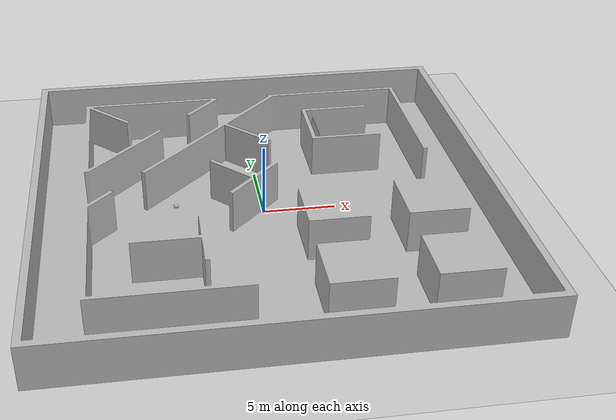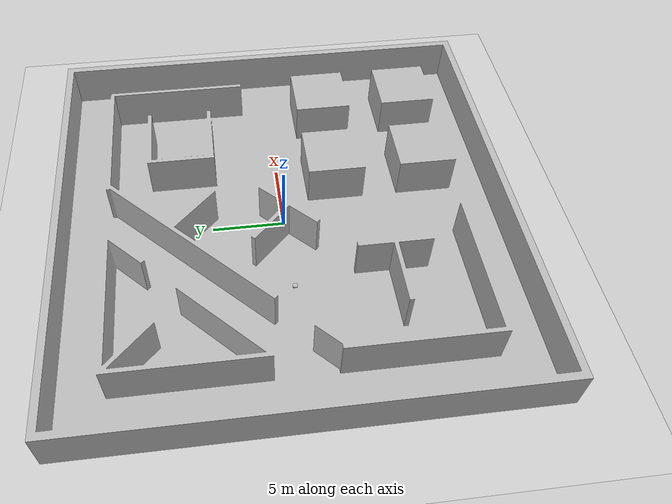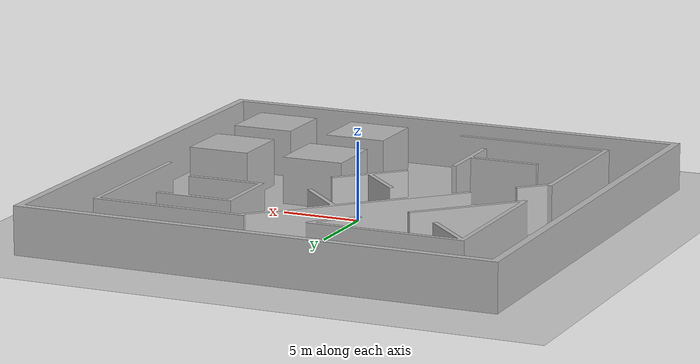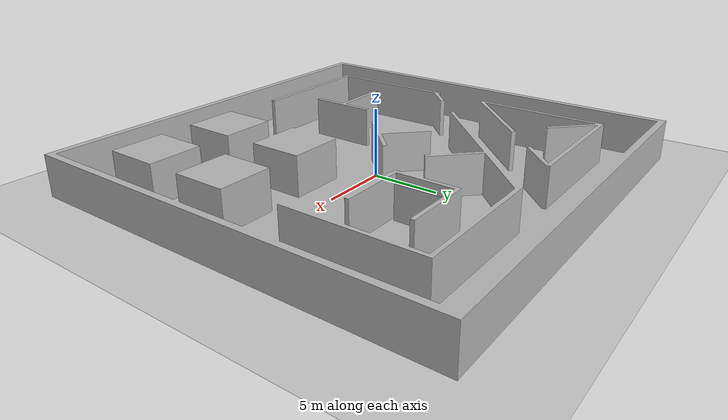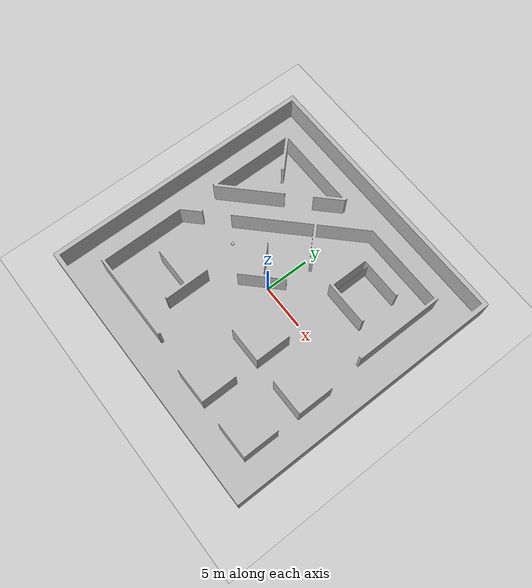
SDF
<?xml version="1.0" ?>
<sdf version="1.6">
  <world name="default">

    <!-- 光照 -->
    <include>
      <uri>model://sun</uri>
    </include>

    <!-- 地面（可选，但建议有，方便定位） -->
    <include>
      <uri>model://ground_plane</uri>
    </include>

    <!-- 你的迷宫墙体 mesh 地图 -->
    <model name="complex_office_map">
      <static>true</static>
      <pose>15.5 15.5 -0.5  1.5708 0 -1.5708</pose>
      <link name="map_link">
        <visual name="map_visual">
          <geometry>
            <mesh>
              <uri>file:///root/catkin_ws/src/FALCON/uav_simulator/map_render/resource/complex_office.dae</uri>
            <scale>1 1 1</scale>
            </mesh>
          </geometry>
        </visual>
      </link>
    </model>

    <include>
    <uri>model:///root/catkin_ws/src/gazebo</uri>
    <name>gz_uav</name>
    <pose>-6 0 1 0 0 0</pose>
    </include>

    <include>
    <uri>model://poster_plane</uri>
    <name>poster1</name>
    <pose>5 7 1 0 0 0</pose>
    </include>

  </world>
</sdf>

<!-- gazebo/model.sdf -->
<sdf version="1.6">
  <model name="falcon_cam_uav">
    <static>false</static>

    <link name="base_link">
      <pose>0 0 0 0 0 0</pose>

      <!-- 一个很小的盒子，方便你在GUI里看到“相机架子” -->
      <visual name="body_vis">
        <geometry>
          <box><size>0.3 0.3 0.1</size></box>
        </geometry>
      </visual>

      <!-- Camera sensor -->
      <sensor name="rgb_camera" type="camera">
        <always_on>true</always_on>
        <update_rate>15</update_rate>
        <camera>
          <horizontal_fov>1.047</horizontal_fov>
          <image>
            <width>640</width>
            <height>480</height>
            <format>R8G8B8</format>
          </image>
          <clip>
            <near>0.05</near>
            <far>50</far>
          </clip>
        </camera>

        <!-- ROS bridge plugin -->
        <plugin name="gazebo_ros_camera" filename="libgazebo_ros_camera.so">
          <cameraName>camera</cameraName>
          <frameName>camera_link</frameName>
          <imageTopicName>image_raw</imageTopicName>
          <cameraInfoTopicName>camera_info</cameraInfoTopicName>
        </plugin>
      </sensor>

    </link>
  </model>
</sdf>

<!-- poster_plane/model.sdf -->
<sdf version="1.6">
  <model name="poster_plane">
    <static>true</static>

    <link name="poster_link">
      <!-- 视觉：一个很薄的盒子，避免与墙面z-fighting -->
      <visual name="poster_visual">
        <pose>0 0 0 0 0 0</pose>
        <geometry>
          <!-- 海报尺寸：先设 1.0m x 0.7m（你可后面改） -->
          <box><size>0.01 4.0 3.0</size></box>
        </geometry>

        <material>
          <script>
            <uri>file:///root/catkin_ws/src/gazebo/poster_plane/materials/scripts</uri>
            <uri>file:///root/catkin_ws/src/gazebo/poster_plane/materials/textures</uri>
            <name>Poster/Poster</name>
          </script>
        </material>
      </visual>
    </link>
  </model>
</sdf>
